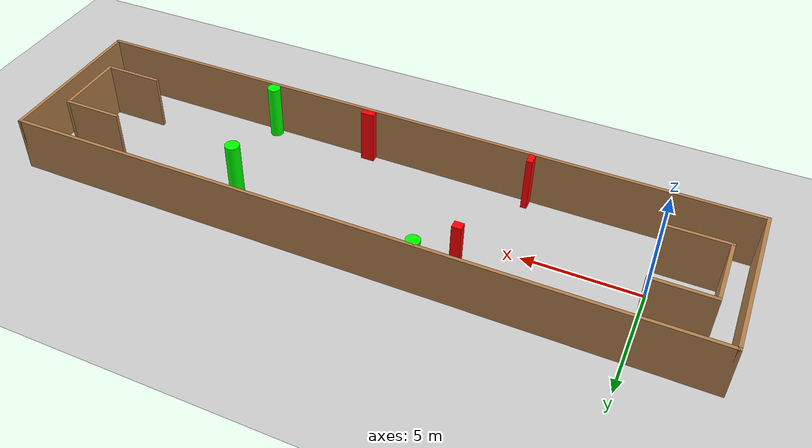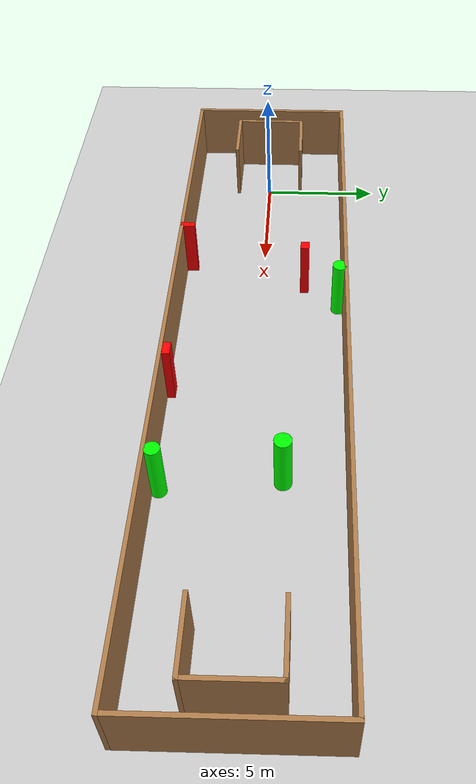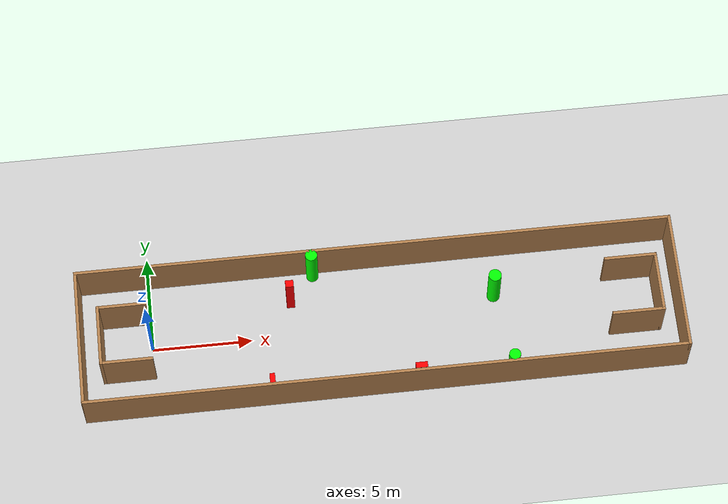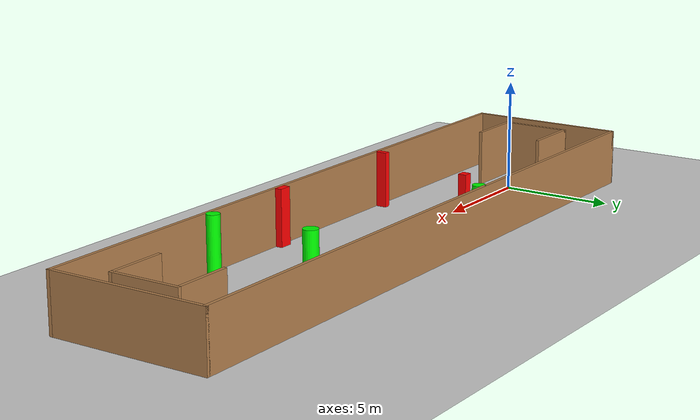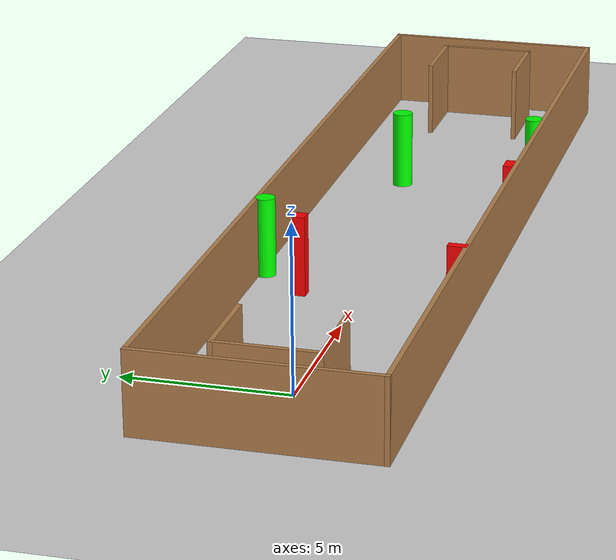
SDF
<sdf version="1.7">
 <world name="default">
  <light name="sun" type="directional">
   <pose>0 0 10 0 -0 0</pose>
   <diffuse>0.8 0.8 0.8 1</diffuse>
   <specular>0.2 0.2 0.2 1</specular>
   <attenuation>
    <range>1000</range>
    <constant>0.9</constant>
    <linear>0.01</linear>
    <quadratic>0.001</quadratic>
   </attenuation>
   <direction>-0.5 0.1 -0.9</direction>
   <spot><inner_angle>0</inner_angle><outer_angle>0</outer_angle><falloff>0</falloff></spot>
  </light>
  <model name="ground_plane">
   <static>1</static>
   <link name="link">
    <collision name="collision">
     <geometry><plane><normal>0 0 1</normal><size>100 100</size></plane></geometry>
     <surface>
      <contact><collide_bitmask>65535</collide_bitmask></contact>
      <friction><ode><mu>100</mu><mu2>50</mu2></ode></friction>
     </surface>
    </collision>
    <visual name="visual">
     <cast_shadows>0</cast_shadows>
     <geometry><plane><normal>0 0 1</normal><size>100 100</size></plane></geometry>
     <material>
      <script><uri>file://media/materials/scripts/gazebo.material</uri><name>Gazebo/Grey</name></script>
     </material>
    </visual>
   </link>
  </model>
  <gravity>0 0 -9.8</gravity>
  <magnetic_field>6e-06 2.3e-05 -4.2e-05</magnetic_field>
  <atmosphere type="adiabatic"/>
  <physics type="ode">
   <max_step_size>0.001</max_step_size>
   <real_time_factor>1</real_time_factor>
   <real_time_update_rate>1000</real_time_update_rate>
  </physics>
  <scene><ambient>0.4 0.4 0.4 1</ambient><background>0.7 0.7 0.7 1</background><shadows>1</shadows></scene>
  <spherical_coordinates>
   <surface_model>EARTH_WGS84</surface_model>
   <latitude_deg>0</latitude_deg>
   <longitude_deg>0</longitude_deg>
   <elevation>0</elevation>
   <heading_deg>0</heading_deg>
  </spherical_coordinates>
  <model name="my_base_walls">
   <link name="Wall_0">
    <collision name="Wall_0_Collision">
     <geometry><box><size>7.15 0.15 2.5</size></box></geometry>
     <pose>0 0 1.25 0 -0 0</pose>
    </collision>
    <visual name="Wall_0_Visual">
     <pose>0 0 1.25 0 -0 0</pose>
     <geometry><box><size>7.15 0.15 2.5</size></box></geometry>
     <material>
      <script><uri>file://media/materials/scripts/gazebo.material</uri><name>Gazebo/Wood</name></script>
      <ambient>1 1 1 1</ambient>
     </material>
     <meta><layer>0</layer></meta>
    </visual>
    <pose>-15 0 0 0 -0 1.5708</pose>
   </link>
   <link name="Wall_10">
    <collision name="Wall_10_Collision">
     <geometry><box><size>2.65 0.15 2.5</size></box></geometry>
     <pose>0 0 1.25 0 -0 0</pose>
    </collision>
    <visual name="Wall_10_Visual">
     <pose>0 0 1.25 0 -0 0</pose>
     <geometry><box><size>2.65 0.15 2.5</size></box></geometry>
     <material>
      <script><uri>file://media/materials/scripts/gazebo.material</uri><name>Gazebo/Wood</name></script>
      <ambient>1 1 1 1</ambient>
     </material>
     <meta><layer>0</layer></meta>
    </visual>
    <pose>-12.75 -1.5 0 0 -0 0</pose>
   </link>
   <link name="Wall_12">
    <collision name="Wall_12_Collision">
     <geometry><box><size>2.65 0.15 2.5</size></box></geometry>
     <pose>0 0 1.25 0 -0 0</pose>
    </collision>
    <visual name="Wall_12_Visual">
     <pose>0 0 1.25 0 -0 0</pose>
     <geometry><box><size>2.65 0.15 2.5</size></box></geometry>
     <material>
      <script><uri>file://media/materials/scripts/gazebo.material</uri><name>Gazebo/Wood</name></script>
      <ambient>1 1 1 1</ambient>
     </material>
     <meta><layer>0</layer></meta>
    </visual>
    <pose>-12.75 1.5 0 0 -0 0</pose>
   </link>
   <link name="Wall_14">
    <collision name="Wall_14_Collision">
     <geometry><box><size>3.15 0.15 2.5</size></box></geometry>
     <pose>0 0 1.25 0 -0 0</pose>
    </collision>
    <visual name="Wall_14_Visual">
     <pose>0 0 1.25 0 -0 0</pose>
     <geometry><box><size>3.15 0.15 2.5</size></box></geometry>
     <material>
      <script><uri>file://media/materials/scripts/gazebo.material</uri><name>Gazebo/Wood</name></script>
      <ambient>1 1 1 1</ambient>
     </material>
     <meta><layer>0</layer></meta>
    </visual>
    <pose>14 0 0 0 -0 -1.5708</pose>
   </link>
   <link name="Wall_15">
    <collision name="Wall_15_Collision">
     <geometry><box><size>2.65 0.15 2.5</size></box></geometry>
     <pose>0 0 1.25 0 -0 0</pose>
    </collision>
    <visual name="Wall_15_Visual">
     <pose>0 0 1.25 0 -0 0</pose>
     <geometry><box><size>2.65 0.15 2.5</size></box></geometry>
     <material>
      <script><uri>file://media/materials/scripts/gazebo.material</uri><name>Gazebo/Wood</name></script>
      <ambient>1 1 1 1</ambient>
     </material>
     <meta><layer>0</layer></meta>
    </visual>
    <pose>12.75 -1.5 0 0 -0 3.14159</pose>
   </link>
   <link name="Wall_17">
    <collision name="Wall_17_Collision">
     <geometry><box><size>2.65 0.15 2.5</size></box></geometry>
     <pose>0 0 1.25 0 -0 0</pose>
    </collision>
    <visual name="Wall_17_Visual">
     <pose>0 0 1.25 0 -0 0</pose>
     <geometry><box><size>2.65 0.15 2.5</size></box></geometry>
     <material>
      <script><uri>file://media/materials/scripts/gazebo.material</uri><name>Gazebo/Wood</name></script>
      <ambient>1 1 1 1</ambient>
     </material>
     <meta><layer>0</layer></meta>
    </visual>
    <pose>12.75 1.5 0 0 -0 3.14159</pose>
   </link>
   <link name="Wall_2">
    <collision name="Wall_2_Collision">
     <geometry><box><size>30.15 0.15 2.5</size></box></geometry>
     <pose>0 0 1.25 0 -0 0</pose>
    </collision>
    <visual name="Wall_2_Visual">
     <pose>0 0 1.25 0 -0 0</pose>
     <geometry><box><size>30.15 0.15 2.5</size></box></geometry>
     <material>
      <script><uri>file://media/materials/scripts/gazebo.material</uri><name>Gazebo/Wood</name></script>
      <ambient>1 1 1 1</ambient>
     </material>
     <meta><layer>0</layer></meta>
    </visual>
    <pose>-0 -3.5 0 0 -0 0</pose>
   </link>
   <link name="Wall_4">
    <collision name="Wall_4_Collision">
     <geometry><box><size>30.15 0.15 2.5</size></box></geometry>
     <pose>0 0 1.25 0 -0 0</pose>
    </collision>
    <visual name="Wall_4_Visual">
     <pose>0 0 1.25 0 -0 0</pose>
     <geometry><box><size>30.15 0.15 2.5</size></box></geometry>
     <material>
      <script><uri>file://media/materials/scripts/gazebo.material</uri><name>Gazebo/Wood</name></script>
      <ambient>1 1 1 1</ambient>
     </material>
     <meta><layer>0</layer></meta>
    </visual>
    <pose>-0 3.5 0 0 -0 0</pose>
   </link>
   <link name="Wall_6">
    <collision name="Wall_6_Collision">
     <geometry><box><size>7.15 0.15 2.5</size></box></geometry>
     <pose>0 0 1.25 0 -0 0</pose>
    </collision>
    <visual name="Wall_6_Visual">
     <pose>0 0 1.25 0 -0 0</pose>
     <geometry><box><size>7.15 0.15 2.5</size></box></geometry>
     <material>
      <script><uri>file://media/materials/scripts/gazebo.material</uri><name>Gazebo/Wood</name></script>
      <ambient>1 1 1 1</ambient>
     </material>
     <meta><layer>0</layer></meta>
    </visual>
    <pose>15 0 0 0 -0 -1.5708</pose>
   </link>
   <link name="Wall_9">
    <collision name="Wall_9_Collision">
     <geometry><box><size>3.15 0.15 2.5</size></box></geometry>
     <pose>0 0 1.25 0 -0 0</pose>
    </collision>
    <visual name="Wall_9_Visual">
     <pose>0 0 1.25 0 -0 0</pose>
     <geometry><box><size>3.15 0.15 2.5</size></box></geometry>
     <material>
      <script><uri>file://media/materials/scripts/gazebo.material</uri><name>Gazebo/Wood</name></script>
      <ambient>1 1 1 1</ambient>
     </material>
     <meta><layer>0</layer></meta>
    </visual>
    <pose>-14 0 0 0 -0 -1.5708</pose>
   </link>
   <static>1</static>
   <pose>11.5 0 0 0 -0 0</pose>
  </model>
  <model name="cylinder1">
   <static>1</static>
   <link name="link">
    <inertial>
     <mass>1</mass>
     <inertia><ixx>0.5</ixx><ixy>0</ixy><ixz>0</ixz><iyy>0.5</iyy><iyz>0</iyz><izz>1</izz></inertia>
    </inertial>
    <collision name="collision">
     <geometry><cylinder><radius>0.28868323046080957</radius><length>2.5</length></cylinder></geometry>
    </collision>
    <visual name="visual">
     <geometry><cylinder><radius>0.28868323046080957</radius><length>2.5</length></cylinder></geometry>
     <material>
      <ambient>0 1 0 1</ambient>
      <diffuse>0 1 0 1</diffuse>
      <specular>0.1 0.1 0.1 1</specular>
      <emissive>0 0 0 0</emissive>
     </material>
    </visual>
   </link>
   <pose>17.825932744977163 -3.1828188265055894 1.25 0 0 0</pose>
  </model>
  <model name="cylinder2">
   <static>1</static>
   <link name="link">
    <inertial>
     <mass>1</mass>
     <inertia><ixx>0.5</ixx><ixy>0</ixy><ixz>0</ixz><iyy>0.5</iyy><iyz>0</iyz><izz>1</izz></inertia>
    </inertial>
    <collision name="collision">
     <geometry><cylinder><radius>0.32240114714365264</radius><length>2.5</length></cylinder></geometry>
    </collision>
    <visual name="visual">
     <geometry><cylinder><radius>0.32240114714365264</radius><length>2.5</length></cylinder></geometry>
     <material>
      <ambient>0 1 0 1</ambient>
      <diffuse>0 1 0 1</diffuse>
      <specular>0.1 0.1 0.1 1</specular>
      <emissive>0 0 0 0</emissive>
     </material>
    </visual>
   </link>
   <pose>17.37650233640253 1.1745162330115182 1.25 0 0 0</pose>
  </model>
  <model name="cylinder3">
   <static>1</static>
   <link name="link">
    <inertial>
     <mass>1</mass>
     <inertia><ixx>0.5</ixx><ixy>0</ixy><ixz>0</ixz><iyy>0.5</iyy><iyz>0</iyz><izz>1</izz></inertia>
    </inertial>
    <collision name="collision">
     <geometry><cylinder><radius>0.3013408113341145</radius><length>2.5</length></cylinder></geometry>
    </collision>
    <visual name="visual">
     <geometry><cylinder><radius>0.3013408113341145</radius><length>2.5</length></cylinder></geometry>
     <material>
      <ambient>0 1 0 1</ambient>
      <diffuse>0 1 0 1</diffuse>
      <specular>0.1 0.1 0.1 1</specular>
      <emissive>0 0 0 0</emissive>
     </material>
    </visual>
   </link>
   <pose>8.345380086006436 3.2505134583270703 1.25 0 0 0</pose>
  </model>
  <model name="box1">
   <static>1</static>
   <link name="link">
    <inertial>
     <mass>1</mass>
     <inertia><ixx>0.083</ixx><ixy>0</ixy><ixz>0</ixz><iyy>0.083</iyy><iyz>0</iyz><izz>0.083</izz></inertia>
    </inertial>
    <collision name="collision">
     <geometry><box><size>0.26243675060129745 0.5949667675255306 2.5</size></box></geometry>
    </collision>
    <visual name="visual">
     <geometry><box><size>0.26243675060129745 0.5949667675255306 2.5</size></box></geometry>
     <material>
      <ambient>1 0 0 1</ambient>
      <diffuse>1 0 0 1</diffuse>
      <specular>0.1 0.1 0.1 1</specular>
      <emissive>0 0 0 0</emissive>
     </material>
    </visual>
    <sensor name="my_contact" type="contact">
     <contact><collision>box_collision</collision><topic>__default_topic__</topic></contact>
    </sensor>
   </link>
   <pose>5.831153061337702 -3.2364280898208815 1.25 0 0 0</pose>
  </model>
  <model name="box2">
   <static>1</static>
   <link name="link">
    <inertial>
     <mass>1</mass>
     <inertia><ixx>0.083</ixx><ixy>0</ixy><ixz>0</ixz><iyy>0.083</iyy><iyz>0</iyz><izz>0.083</izz></inertia>
    </inertial>
    <collision name="collision">
     <geometry><box><size>0.5911021870034645 0.3001288895572826 2.5</size></box></geometry>
    </collision>
    <visual name="visual">
     <geometry><box><size>0.5911021870034645 0.3001288895572826 2.5</size></box></geometry>
     <material>
      <ambient>1 0 0 1</ambient>
      <diffuse>1 0 0 1</diffuse>
      <specular>0.1 0.1 0.1 1</specular>
      <emissive>0 0 0 0</emissive>
     </material>
    </visual>
    <sensor name="my_contact" type="contact">
     <contact><collision>box_collision</collision><topic>__default_topic__</topic></contact>
    </sensor>
   </link>
   <pose>13.1925993891943 -3.268021208109882 1.25 0 0 0</pose>
  </model>
  <model name="box3">
   <static>1</static>
   <link name="link">
    <inertial>
     <mass>1</mass>
     <inertia><ixx>0.083</ixx><ixy>0</ixy><ixz>0</ixz><iyy>0.083</iyy><iyz>0</iyz><izz>0.083</izz></inertia>
    </inertial>
    <collision name="collision">
     <geometry><box><size>0.41040154368170806 0.36318551882929917 2.5</size></box></geometry>
    </collision>
    <visual name="visual">
     <geometry><box><size>0.41040154368170806 0.36318551882929917 2.5</size></box></geometry>
     <material>
      <ambient>1 0 0 1</ambient>
      <diffuse>1 0 0 1</diffuse>
      <specular>0.1 0.1 0.1 1</specular>
      <emissive>0 0 0 0</emissive>
     </material>
    </visual>
    <sensor name="my_contact" type="contact">
     <contact><collision>box_collision</collision><topic>__default_topic__</topic></contact>
    </sensor>
   </link>
   <pose>7.111068887416197 1.8021466835607498 1.25 0 0 0</pose>
  </model>
 </world>
</sdf>
